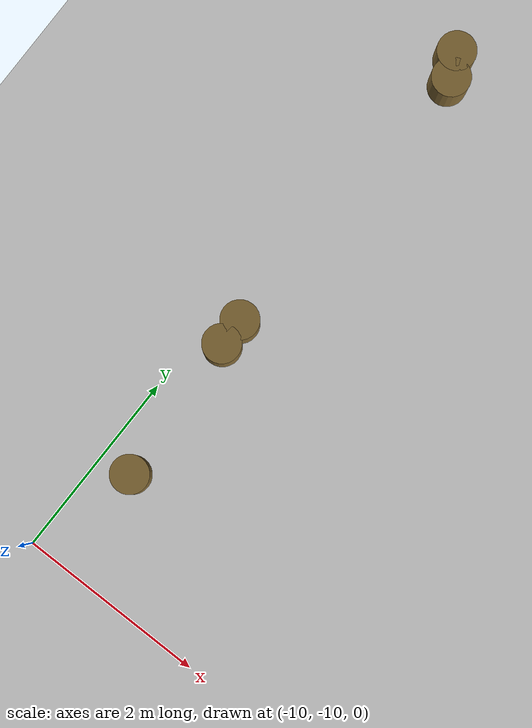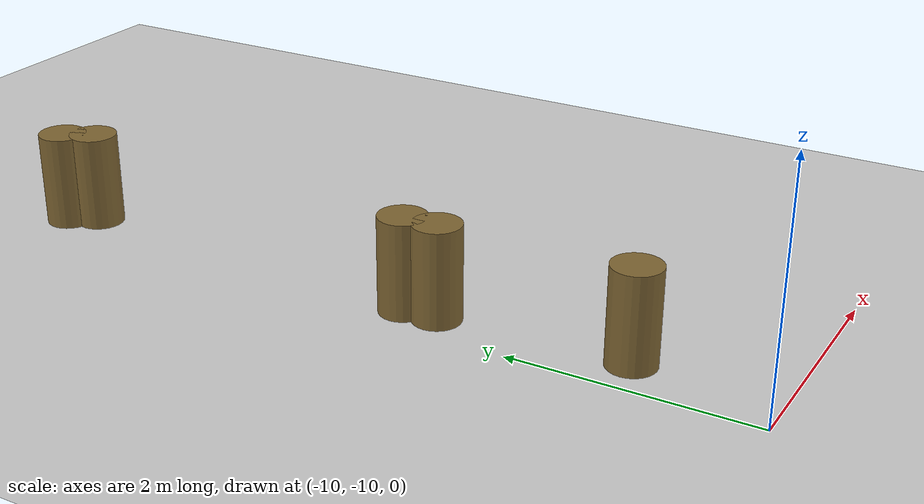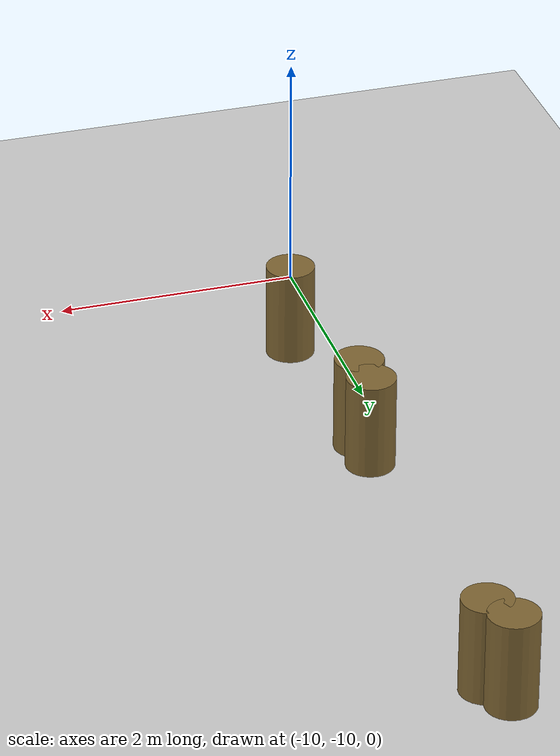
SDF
<sdf version="1.6">
 <world name="default">
  <model name="ground_plane">
   <static>1</static>
   <link name="link">
    <collision name="collision">
     <geometry><plane><normal>0 0 1</normal><size>100 100</size></plane></geometry>
     <surface><friction><ode><mu>100</mu><mu2>50</mu2></ode></friction></surface>
    </collision>
    <visual name="visual">
     <cast_shadows>0</cast_shadows>
     <geometry><plane><normal>0 0 1</normal><size>100 100</size></plane></geometry>
     <material>
      <script><uri>file://media/materials/scripts/gazebo.material</uri><name>Gazebo/Grey</name></script>
     </material>
    </visual>
   </link>
  </model>
  <model name="mini_cylinder_0_clone_0_clone_clone_clone_clone_3_clone_15">
   <link name="link">
    <inertial>
     <mass>1</mass>
     <inertia><ixx>0.145833</ixx><ixy>0</ixy><ixz>0</ixz><iyy>0.145833</iyy><iyz>0</iyz><izz>0.125</izz></inertia>
    </inertial>
    <visual name="visual">
     <geometry><cylinder><radius>0.2</radius><length>0.8</length></cylinder></geometry>
     <material>
      <script><name>Gazebo/Grey</name><uri>file://media/materials/scripts/gazebo.material</uri></script>
      <shader type="vertex"><normal_map>__default__</normal_map></shader>
      <ambient>0.5 0.4 0.2 1</ambient>
      <diffuse>0.7 0.7 0.7 1</diffuse>
      <specular>0.01 0.01 0.01 1</specular>
      <emissive>0 0 0 1</emissive>
     </material>
    </visual>
    <collision name="collision">
     <geometry><cylinder><radius>0.2</radius><length>0.8</length></cylinder></geometry>
     <surface>
      <friction>
       <ode><mu>1</mu><mu2>1</mu2><fdir1>0 0 0</fdir1><slip1>0</slip1><slip2>0</slip2></ode>
       <torsional>
        <coefficient>1</coefficient>
        <patch_radius>0</patch_radius>
        <surface_radius>0</surface_radius>
        <use_patch_radius>1</use_patch_radius>
        <ode><slip>0</slip></ode>
       </torsional>
      </friction>
      <bounce><restitution_coefficient>0</restitution_coefficient><threshold>1e+06</threshold></bounce>
      <contact>
       <collide_without_contact>0</collide_without_contact>
       <collide_without_contact_bitmask>1</collide_without_contact_bitmask>
       <collide_bitmask>1</collide_bitmask>
       <ode>
        <soft_cfm>0</soft_cfm>
        <soft_erp>0.2</soft_erp>
        <kp>1e+13</kp>
        <kd>1</kd>
        <max_vel>0.01</max_vel>
        <min_depth>0</min_depth>
       </ode>
       <bullet>
        <split_impulse>1</split_impulse>
        <split_impulse_penetration_threshold>-0.01</split_impulse_penetration_threshold>
        <soft_cfm>0</soft_cfm>
        <soft_erp>0.2</soft_erp>
        <kp>1e+13</kp>
        <kd>1</kd>
       </bullet>
      </contact>
     </surface>
    </collision>
   </link>
   <static>1</static>
   <pose>-9.71455 -3.60876 0.4 0 -0 0</pose>
  </model>
  <model name="mini_cylinder_0_clone_0_clone_clone_clone_clone_3_clone_16">
   <link name="link">
    <inertial>
     <mass>1</mass>
     <inertia><ixx>0.145833</ixx><ixy>0</ixy><ixz>0</ixz><iyy>0.145833</iyy><iyz>0</iyz><izz>0.125</izz></inertia>
    </inertial>
    <visual name="visual">
     <geometry><cylinder><radius>0.2</radius><length>0.8</length></cylinder></geometry>
     <material>
      <script><name>Gazebo/Grey</name><uri>file://media/materials/scripts/gazebo.material</uri></script>
      <shader type="vertex"><normal_map>__default__</normal_map></shader>
      <ambient>0.5 0.4 0.2 1</ambient>
      <diffuse>0.7 0.7 0.7 1</diffuse>
      <specular>0.01 0.01 0.01 1</specular>
      <emissive>0 0 0 1</emissive>
     </material>
    </visual>
    <collision name="collision">
     <geometry><cylinder><radius>0.2</radius><length>0.8</length></cylinder></geometry>
     <surface>
      <friction>
       <ode><mu>1</mu><mu2>1</mu2><fdir1>0 0 0</fdir1><slip1>0</slip1><slip2>0</slip2></ode>
       <torsional>
        <coefficient>1</coefficient>
        <patch_radius>0</patch_radius>
        <surface_radius>0</surface_radius>
        <use_patch_radius>1</use_patch_radius>
        <ode><slip>0</slip></ode>
       </torsional>
      </friction>
      <bounce><restitution_coefficient>0</restitution_coefficient><threshold>1e+06</threshold></bounce>
      <contact>
       <collide_without_contact>0</collide_without_contact>
       <collide_without_contact_bitmask>1</collide_without_contact_bitmask>
       <collide_bitmask>1</collide_bitmask>
       <ode>
        <soft_cfm>0</soft_cfm>
        <soft_erp>0.2</soft_erp>
        <kp>1e+13</kp>
        <kd>1</kd>
        <max_vel>0.01</max_vel>
        <min_depth>0</min_depth>
       </ode>
       <bullet>
        <split_impulse>1</split_impulse>
        <split_impulse_penetration_threshold>-0.01</split_impulse_penetration_threshold>
        <soft_cfm>0</soft_cfm>
        <soft_erp>0.2</soft_erp>
        <kp>1e+13</kp>
        <kd>1</kd>
       </bullet>
      </contact>
     </surface>
    </collision>
   </link>
   <static>1</static>
   <pose>-9.59735 -3.84457 0.4 0 -0 0</pose>
  </model>
  <model name="mini_cylinder_0_clone_0_clone_clone_clone_clone_3_clone_20_clone_124">
   <link name="link">
    <inertial>
     <mass>1</mass>
     <inertia><ixx>0.145833</ixx><ixy>0</ixy><ixz>0</ixz><iyy>0.145833</iyy><iyz>0</iyz><izz>0.125</izz></inertia>
    </inertial>
    <visual name="visual">
     <geometry><cylinder><radius>0.2</radius><length>0.8</length></cylinder></geometry>
     <material>
      <script><name>Gazebo/Grey</name><uri>file://media/materials/scripts/gazebo.material</uri></script>
      <shader type="vertex"><normal_map>__default__</normal_map></shader>
      <ambient>0.5 0.4 0.2 1</ambient>
      <diffuse>0.7 0.7 0.7 1</diffuse>
      <specular>0.01 0.01 0.01 1</specular>
      <emissive>0 0 0 1</emissive>
     </material>
    </visual>
    <collision name="collision">
     <geometry><cylinder><radius>0.2</radius><length>0.8</length></cylinder></geometry>
     <surface>
      <friction>
       <ode><mu>1</mu><mu2>1</mu2><fdir1>0 0 0</fdir1><slip1>0</slip1><slip2>0</slip2></ode>
       <torsional>
        <coefficient>1</coefficient>
        <patch_radius>0</patch_radius>
        <surface_radius>0</surface_radius>
        <use_patch_radius>1</use_patch_radius>
        <ode><slip>0</slip></ode>
       </torsional>
      </friction>
      <bounce><restitution_coefficient>0</restitution_coefficient><threshold>1e+06</threshold></bounce>
      <contact>
       <collide_without_contact>0</collide_without_contact>
       <collide_without_contact_bitmask>1</collide_without_contact_bitmask>
       <collide_bitmask>1</collide_bitmask>
       <ode>
        <soft_cfm>0</soft_cfm>
        <soft_erp>0.2</soft_erp>
        <kp>1e+13</kp>
        <kd>1</kd>
        <max_vel>0.01</max_vel>
        <min_depth>0</min_depth>
       </ode>
       <bullet>
        <split_impulse>1</split_impulse>
        <split_impulse_penetration_threshold>-0.01</split_impulse_penetration_threshold>
        <soft_cfm>0</soft_cfm>
        <soft_erp>0.2</soft_erp>
        <kp>1e+13</kp>
        <kd>1</kd>
       </bullet>
      </contact>
     </surface>
    </collision>
   </link>
   <static>1</static>
   <pose>-9.73964 -6.99846 0.4 0 -0 0</pose>
  </model>
  <model name="mini_cylinder_0_clone_0_clone_clone_clone_clone_3_clone_20_clone_125">
   <link name="link">
    <inertial>
     <mass>1</mass>
     <inertia><ixx>0.145833</ixx><ixy>0</ixy><ixz>0</ixz><iyy>0.145833</iyy><iyz>0</iyz><izz>0.125</izz></inertia>
    </inertial>
    <visual name="visual">
     <geometry><cylinder><radius>0.2</radius><length>0.8</length></cylinder></geometry>
     <material>
      <script><name>Gazebo/Grey</name><uri>file://media/materials/scripts/gazebo.material</uri></script>
      <shader type="vertex"><normal_map>__default__</normal_map></shader>
      <ambient>0.5 0.4 0.2 1</ambient>
      <diffuse>0.7 0.7 0.7 1</diffuse>
      <specular>0.01 0.01 0.01 1</specular>
      <emissive>0 0 0 1</emissive>
     </material>
    </visual>
    <collision name="collision">
     <geometry><cylinder><radius>0.2</radius><length>0.8</length></cylinder></geometry>
     <surface>
      <friction>
       <ode><mu>1</mu><mu2>1</mu2><fdir1>0 0 0</fdir1><slip1>0</slip1><slip2>0</slip2></ode>
       <torsional>
        <coefficient>1</coefficient>
        <patch_radius>0</patch_radius>
        <surface_radius>0</surface_radius>
        <use_patch_radius>1</use_patch_radius>
        <ode><slip>0</slip></ode>
       </torsional>
      </friction>
      <bounce><restitution_coefficient>0</restitution_coefficient><threshold>1e+06</threshold></bounce>
      <contact>
       <collide_without_contact>0</collide_without_contact>
       <collide_without_contact_bitmask>1</collide_without_contact_bitmask>
       <collide_bitmask>1</collide_bitmask>
       <ode>
        <soft_cfm>0</soft_cfm>
        <soft_erp>0.2</soft_erp>
        <kp>1e+13</kp>
        <kd>1</kd>
        <max_vel>0.01</max_vel>
        <min_depth>0</min_depth>
       </ode>
       <bullet>
        <split_impulse>1</split_impulse>
        <split_impulse_penetration_threshold>-0.01</split_impulse_penetration_threshold>
        <soft_cfm>0</soft_cfm>
        <soft_erp>0.2</soft_erp>
        <kp>1e+13</kp>
        <kd>1</kd>
       </bullet>
      </contact>
     </surface>
    </collision>
   </link>
   <static>1</static>
   <pose>-9.735 -7.29075 0.4 0 -0 0</pose>
  </model>
  <model name="mini_cylinder_0_clone_0_clone_clone_clone_clone_3_clone_20_clone_131">
   <link name="link">
    <inertial>
     <mass>1</mass>
     <inertia><ixx>0.145833</ixx><ixy>0</ixy><ixz>0</ixz><iyy>0.145833</iyy><iyz>0</iyz><izz>0.125</izz></inertia>
    </inertial>
    <visual name="visual">
     <geometry><cylinder><radius>0.2</radius><length>0.8</length></cylinder></geometry>
     <material>
      <script><name>Gazebo/Grey</name><uri>file://media/materials/scripts/gazebo.material</uri></script>
      <shader type="vertex"><normal_map>__default__</normal_map></shader>
      <ambient>0.5 0.4 0.2 1</ambient>
      <diffuse>0.7 0.7 0.7 1</diffuse>
      <specular>0.01 0.01 0.01 1</specular>
      <emissive>0 0 0 1</emissive>
     </material>
    </visual>
    <collision name="collision">
     <geometry><cylinder><radius>0.2</radius><length>0.8</length></cylinder></geometry>
     <surface>
      <friction>
       <ode><mu>1</mu><mu2>1</mu2><fdir1>0 0 0</fdir1><slip1>0</slip1><slip2>0</slip2></ode>
       <torsional>
        <coefficient>1</coefficient>
        <patch_radius>0</patch_radius>
        <surface_radius>0</surface_radius>
        <use_patch_radius>1</use_patch_radius>
        <ode><slip>0</slip></ode>
       </torsional>
      </friction>
      <bounce><restitution_coefficient>0</restitution_coefficient><threshold>1e+06</threshold></bounce>
      <contact>
       <collide_without_contact>0</collide_without_contact>
       <collide_without_contact_bitmask>1</collide_without_contact_bitmask>
       <collide_bitmask>1</collide_bitmask>
       <ode>
        <soft_cfm>0</soft_cfm>
        <soft_erp>0.2</soft_erp>
        <kp>1e+13</kp>
        <kd>1</kd>
        <max_vel>0.01</max_vel>
        <min_depth>0</min_depth>
       </ode>
       <bullet>
        <split_impulse>1</split_impulse>
        <split_impulse_penetration_threshold>-0.01</split_impulse_penetration_threshold>
        <soft_cfm>0</soft_cfm>
        <soft_erp>0.2</soft_erp>
        <kp>1e+13</kp>
        <kd>1</kd>
       </bullet>
      </contact>
     </surface>
    </collision>
   </link>
   <static>1</static>
   <pose>-9.64567 -8.84913 0.4 0 -0 0</pose>
  </model>
 </world>
</sdf>
